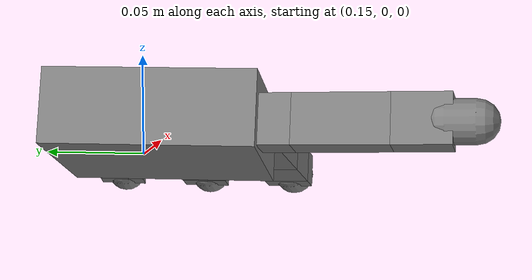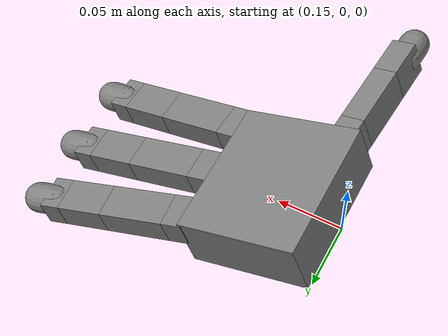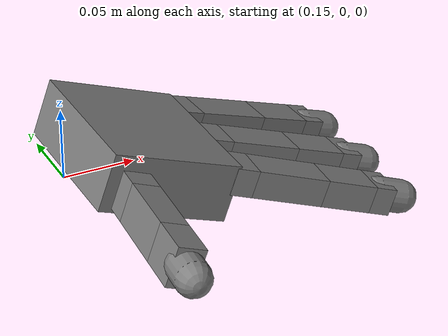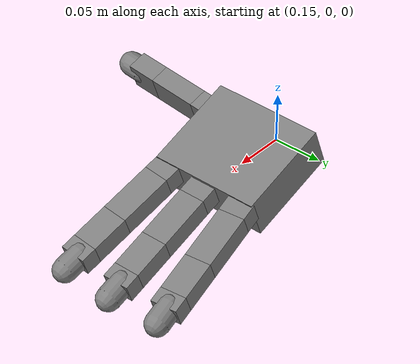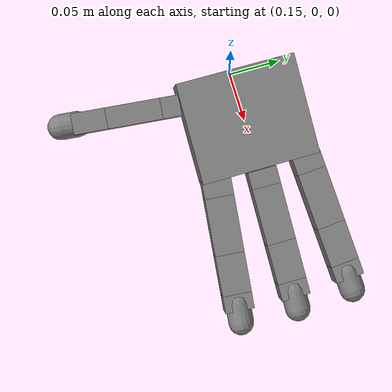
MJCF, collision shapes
<mujoco model="allegro_right">
  <compiler angle="radian" meshdir="assets" autolimits="true"/>

  <option cone="elliptic" impratio="10"/>

  <default>
    <default class="allegro_right">
      <joint axis="0 1 0" damping=".1"/>
      <position kp="0.5"/>
      <geom density="800"/>

      <default class="visual">
        <geom type="mesh" contype="0" conaffinity="0" group="2" material="black"/>
        <default class="palm_visual">
          <geom mesh="base_link"/>
        </default>
        <default class="base_visual">
          <geom mesh="link_0.0"/>
        </default>
        <default class="proximal_visual">
          <geom mesh="link_1.0"/>
        </default>
        <default class="medial_visual">
          <geom mesh="link_2.0"/>
        </default>
        <default class="distal_visual">
          <geom mesh="link_3.0"/>
        </default>
        <default class="fingertip_visual">
          <geom pos="0 0 0.0267" material="white" mesh="link_3.0_tip"/>
        </default>
        <default class="thumbtip_visual">
          <geom pos="0 0 0.0423" material="white" mesh="link_15.0_tip"/>
        </default>
      </default>

      <default class="collision">
        <geom group="3" type="box" mass="0"/>
        <default class="palm_collision">
          <geom size="0.0204 0.0565 0.0475" pos="-0.0093 0 -0.0475"/>
        </default>
        <default class="base_collision">
          <geom size="0.0098 0.01375 0.0082" pos="0 0 0.0082"/>
          <default class="thumb_base_collision">
            <geom size="0.0179 0.017 0.02275" pos="-0.0179 0.009 0.0145"/>
          </default>
        </default>
        <default class="proximal_collision">
          <geom size="0.0098 0.01375 0.027" pos="0 0 0.027"/>
          <default class="thumb_proximal_collision">
            <geom size="0.0098 0.01375 0.00885" pos="0 0 0.00885"/>
          </default>
        </default>
        <default class="medial_collision">
          <geom size="0.0098 0.01375 0.0192" pos="0 0 0.0192"/>
          <default class="thumb_medial_collision">
            <geom size="0.0098 0.01375 0.0257" pos="0 0 0.0257"/>
          </default>
        </default>
        <default class="distal_collision">
          <geom size="0.0098 0.01375 0.008" pos="0 0 0.008"/>
          <default class="thumb_distal_collision">
            <geom size="0.0098 0.01375 0.0157" pos="0 0 0.0157"/>
          </default>
        </default>
        <default class="fingertip_collision">
          <geom type="capsule" size="0.012 0.01" pos="0 0 0.019"/>
          <default class="thumbtip_collision">
            <geom type="capsule" size="0.012 0.008" pos="0 0 0.035" friction="1.0 0.05 0.01" condim="6"/>
          </default>
        </default>
      </default>

      <default class="base">
        <joint axis="0 0 1" range="-0.47 0.47"/>
        <position ctrlrange="-0.47 0.47"/>
      </default>
      <default class="proximal">
        <joint range="-0.196 1.61"/>
        <position ctrlrange="-0.196 1.61"/>
      </default>
      <default class="medial">
        <joint range="-0.174 1.709"/>
        <position ctrlrange="-0.174 1.709"/>
      </default>
      <default class="distal">
        <joint range="-0.227 1.618"/>
        <position ctrlrange="-0.227 1.618"/>
      </default>
      <default class="thumb_base">
        <joint axis="-1 0 0" range="0.263 1.396"/>
        <position ctrlrange="0.263 1.396"/>
      </default>
      <default class="thumb_proximal">
        <joint axis="0 0 1" range="-0.105 1.163"/>
        <position ctrlrange="-0.105 1.163"/>
      </default>
      <default class="thumb_medial">
        <joint range="-0.189 1.644"/>
        <position ctrlrange="-0.189 1.644"/>
      </default>
      <default class="thumb_distal">
        <joint range="-0.162 1.719"/>
        <position ctrlrange="-0.162 1.719"/>
      </default>
    </default>
  </default>

  <asset>
    <material name="black" rgba="0.2 0.2 0.2 1"/>
    <material name="white" rgba="0.9 0.9 0.9 1"/>

    <mesh file="base_link.stl"/>
    <mesh file="link_0.0.stl"/>
    <mesh file="link_1.0.stl"/>
    <mesh file="link_2.0.stl"/>
    <mesh file="link_3.0.stl"/>
    <mesh file="link_3.0_tip.stl"/>
    <mesh file="link_12.0_right.stl"/>
    <mesh file="link_13.0.stl"/>
    <mesh file="link_14.0.stl"/>
    <mesh file="link_15.0.stl"/>
    <mesh file="link_15.0_tip.stl"/>
  </asset>

  <worldbody>
    <body name="palm" pos="0.25 0 0" quat="0 1 0 0.7" childclass="allegro_right">
      <site name="grasp_site" pos="0.03 0.01 -0.03" group="4"/>

      <!-- Reference positions for the finger tips -->
      <site name="ff_ref" pos="0.09 0.05 0.02" group="4"/>
      <site name="mf_ref" pos="0.09 0.0 0.02" group="4"/>
      <site name="rf_ref" pos="0.09 -0.04 0.02" group="4"/>
      <site name="th_ref" pos="0.08 0.06 -0.06" group="4"/>

      <geom class="palm_visual" mesh="base_link"/>
      <geom class="palm_collision"/>
      <!-- First finger -->
      <body name="ff_base" pos="0 0.0435 -0.001542" quat="0.999048 -0.0436194 0 0">
        <joint name="ffj0" class="base"/>
        <geom class="base_visual"/>
        <geom class="base_collision"/>
        <body name="ff_proximal" pos="0 0 0.0164">
          <joint name="ffj1" class="proximal"/>
          <geom class="proximal_visual"/>
          <geom class="proximal_collision"/>
          <body name="ff_medial" pos="0 0 0.054">
            <joint name="ffj2" class="medial"/>
            <geom class="medial_visual"/>
            <geom class="medial_collision"/>
            <body name="ff_distal" pos="0 0 0.0384">
              <joint name="ffj3" class="distal"/>
              <geom class="distal_visual"/>
              <geom class="distal_collision"/>
              <body name="ff_tip">
                <geom class="fingertip_visual"/>
                <geom class="fingertip_collision"/>
                <site name="ff_tip" pos="0 0 0.025"/>
              </body>
            </body>
          </body>
        </body>
      </body>
      <!-- Middle finger -->
      <body name="mf_base" pos="0 0 0.0007">
        <joint name="mfj0" class="base"/>
        <geom class="base_visual"/>
        <geom class="base_collision"/>
        <body name="mf_proximal" pos="0 0 0.0164">
          <joint name="mfj1" class="proximal"/>
          <geom class="proximal_visual"/>
          <geom class="proximal_collision"/>
          <body name="mf_medial" pos="0 0 0.054">
            <joint name="mfj2" class="medial"/>
            <geom class="medial_visual"/>
            <geom class="medial_collision"/>
            <body name="mf_distal" pos="0 0 0.0384">
              <joint name="mfj3" class="distal"/>
              <geom class="distal_visual"/>
              <geom class="distal_collision"/>
              <body name="mf_tip">
                <geom class="fingertip_visual"/>
                <geom class="fingertip_collision"/>
                <site name="mf_tip" pos="0 0 0.025"/>
              </body>
            </body>
          </body>
        </body>
      </body>
      <!-- Ring finger -->
      <body name="rf_base" pos="0 -0.0435 -0.001542" quat="0.999048 0.0436194 0 0">
        <joint name="rfj0" class="base"/>
        <geom class="base_visual"/>
        <geom class="base_collision"/>
        <body name="rf_proximal" pos="0 0 0.0164">
          <joint name="rfj1" class="proximal"/>
          <geom class="proximal_visual"/>
          <geom class="proximal_collision"/>
          <body name="rf_medial" pos="0 0 0.054">
            <joint name="rfj2" class="medial"/>
            <geom class="medial_visual"/>
            <geom class="medial_collision"/>
            <body name="rf_distal" pos="0 0 0.0384">
              <joint name="rfj3" class="distal"/>
              <geom class="distal_visual"/>
              <geom class="distal_collision"/>
              <body name="rf_tip">
                <geom class="fingertip_visual"/>
                <geom class="fingertip_collision"/>
                <site name="rf_tip" pos="0 0 0.025"/>
              </body>
            </body>
          </body>
        </body>
      </body>
      <!-- Thumb -->
      <body name="th_base" pos="-0.0182 0.019333 -0.045987" quat="0.477714 -0.521334 -0.521334 -0.477714">
        <joint name="thj0" class="thumb_base"/>
        <geom class="visual" mesh="link_12.0_right"/>
        <geom class="thumb_base_collision"/>
        <body name="th_proximal" pos="-0.027 0.005 0.0399">
          <joint name="thj1" class="thumb_proximal"/>
          <geom class="visual" mesh="link_13.0"/>
          <geom class="thumb_proximal_collision"/>
          <body name="th_medial" pos="0 0 0.0177">
            <joint name="thj2" class="thumb_medial"/>
            <geom class="visual" mesh="link_14.0"/>
            <geom class="thumb_medial_collision"/>
            <body name="th_distal" pos="0 0 0.0514">
              <joint name="thj3" class="thumb_distal"/>
              <geom class="visual" mesh="link_15.0"/>
              <geom class="thumb_distal_collision"/>
              <body name="th_tip">
                <geom class="thumbtip_visual"/>
                <geom class="thumbtip_collision"/>
                <site name="th_tip" pos="0 0 0.04"/>
              </body>
            </body>
          </body>
        </body>
      </body>
    </body>
  </worldbody>

  <contact>
    <exclude body1="palm" body2="ff_base"/>
    <exclude body1="palm" body2="mf_base"/>
    <exclude body1="palm" body2="rf_base"/>
    <exclude body1="palm" body2="th_base"/>
    <exclude body1="palm" body2="th_proximal"/>
  </contact>

  <default>
    <default class="fingertip_actuator">
      <position kp="100" kv="5" ctrlrange="-0.1 0.1"/>
    </default>
  </default>

  <actuator>
    <position name="ff1" site="ff_tip" refsite="ff_ref" gear="1 0 0 0 0 0" class="fingertip_actuator"/>
    <position name="ff2" site="ff_tip" refsite="ff_ref" gear="0 1 0 0 0 0" class="fingertip_actuator"/>
    <position name="ff3" site="ff_tip" refsite="ff_ref" gear="0 0 1 0 0 0" class="fingertip_actuator"/>
    <position name="mf1" site="mf_tip" refsite="mf_ref" gear="1 0 0 0 0 0" class="fingertip_actuator"/>
    <position name="mf2" site="mf_tip" refsite="mf_ref" gear="0 1 0 0 0 0" class="fingertip_actuator"/>
    <position name="mf3" site="mf_tip" refsite="mf_ref" gear="0 0 1 0 0 0" class="fingertip_actuator"/>
    <position name="rf1" site="rf_tip" refsite="rf_ref" gear="1 0 0 0 0 0" class="fingertip_actuator"/>
    <position name="rf2" site="rf_tip" refsite="rf_ref" gear="0 1 0 0 0 0" class="fingertip_actuator"/>
    <position name="rf3" site="rf_tip" refsite="rf_ref" gear="0 0 1 0 0 0" class="fingertip_actuator"/>
    <position name="th1" site="th_tip" refsite="th_ref" gear="1 0 0 0 0 0" class="fingertip_actuator"/>
    <position name="th2" site="th_tip" refsite="th_ref" gear="0 1 0 0 0 0" class="fingertip_actuator"/>
    <position name="th3" site="th_tip" refsite="th_ref" gear="0 0 1 0 0 0" class="fingertip_actuator"/>
  </actuator>

  <!-- Traces for visualizing rollouts -->
  <sensor>
    <framepos name="trace1" objtype="body" objname="rf_tip"/>
    <framepos name="trace2" objtype="body" objname="ff_tip"/>
    <framepos name="trace3" objtype="body" objname="mf_tip"/>
    <framepos name="trace4" objtype="body" objname="th_tip"/>
  </sensor>
</mujoco>
